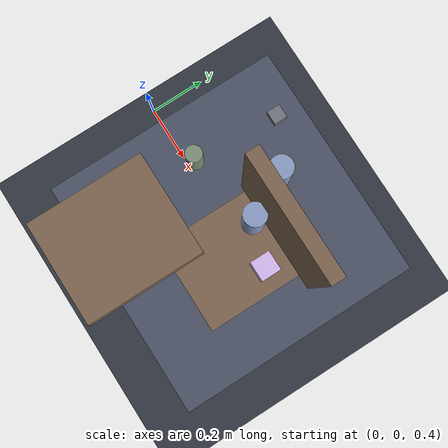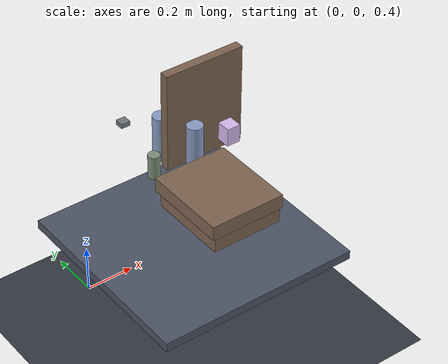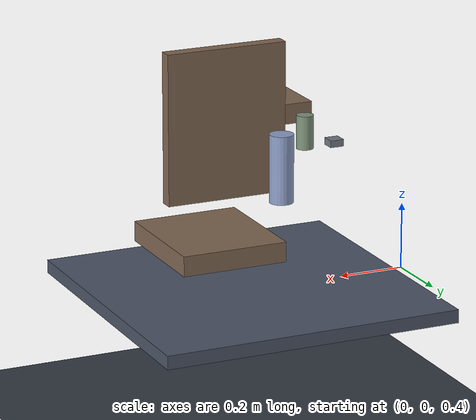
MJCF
<mujoco model="sim2field-kitchen-001-dis-08">
  <compiler angle="radian" autolimits="true"/>
  <option gravity="0 0 -9.81" integrator="implicitfast" timestep="0.002"/>
  <asset>
    <texture name="grid" type="2d" builtin="checker" rgb1="0.18 0.20 0.24" rgb2="0.22 0.24 0.28"
             width="300" height="300"/>
    <material name="grid" texture="grid" texrepeat="6 6" reflectance="0.1"/>
    <material name="counter" rgba="0.30 0.33 0.40 1"/>
  </asset>
  <worldbody>
    <light pos="0.6 0 1.4" dir="0 0 -1" diffuse="0.8 0.8 0.8" ambient="0.3 0.3 0.3"/>
    <geom name="floor" type="plane" size="2 2 0.1" material="grid"/>
    <body name="counter" pos="0.5 0 0.40">
      <geom type="box" size="0.45 0.45 0.02" material="counter" friction="1.0000 0.0050 0.0001"/>
    </body>
    <body name="cabinet_handle" pos="0.6200 0.1000 0.9500" quat="1.0000 0.0000 0.0000 0.0000">
      <joint name="cabinet_handle_hinge" type="hinge" axis="0 0 1" range="0 1.8" damping="2"/>
      <geom type="box" size="0.1800 0.0200 0.2200" mass="1.500" friction="1.0000 0.0050 0.0001" rgba="0.50 0.40 0.32 1"/>
    </body>
    <body name="faucet" pos="0.4000 -0.3000 0.8800" quat="1.0000 0.0000 0.0000 0.0000">
      <joint name="faucet_slide" type="slide" axis="1 0 0" range="0 0.35" damping="3"/>
      <geom type="box" size="0.1600 0.1800 0.0300" mass="1.200" friction="1.0000 0.0050 0.0001" rgba="0.50 0.40 0.32 1"/>
    </body>
    <body name="bottle" pos="0.5500 0.0500 0.8200" quat="1.0000 0.0000 0.0000 0.0000">
      <freejoint/>
      <geom type="cylinder" size="0.0350 0.1000" mass="0.400" friction="1.0000 0.0050 0.0001" rgba="0.55 0.62 0.78 1"/>
    </body>
    <body name="mug" pos="0.4800 0.1800 0.8200" quat="1.0000 0.0000 0.0000 0.0000">
      <freejoint/>
      <geom type="cylinder" size="0.0350 0.1000" mass="0.400" friction="1.0000 0.0050 0.0001" rgba="0.55 0.62 0.78 1"/>
    </body>
    <body name="drawer" pos="0.6000 -0.0500 0.5500" quat="1.0000 0.0000 0.0000 0.0000">
      <joint name="drawer_slide" type="slide" axis="1 0 0" range="0 0.35" damping="3"/>
      <geom type="box" size="0.1600 0.1800 0.0300" mass="1.200" friction="1.0000 0.0050 0.0001" rgba="0.50 0.40 0.32 1"/>
    </body>
    <body name="stove_knob" pos="0.3500 0.2500 0.9000" quat="1.0000 0.0000 0.0000 0.0000">
      <geom type="box" size="0.0200 0.0200 0.0100" friction="1.0000 0.0050 0.0001" rgba="0.45 0.47 0.50 1"/>
    </body>
    <body name="distractor_0_gso_mug_03" pos="0.6800 0.0000 0.8600">
      <freejoint/>
      <geom type="box" size="0.0300 0.0300 0.0400" mass="0.20" friction="1.0000 0.0050 0.0001" rgba="0.85 0.74 0.95 1"/>
    </body>
    <body name="distractor_1_gso_box_07" pos="0.3200 0.0000 0.8600">
      <freejoint/>
      <geom type="cylinder" size="0.0250 0.0500" mass="0.20" friction="1.0000 0.0050 0.0001" rgba="0.50 0.57 0.48 1"/>
    </body>
  </worldbody>
</mujoco>
